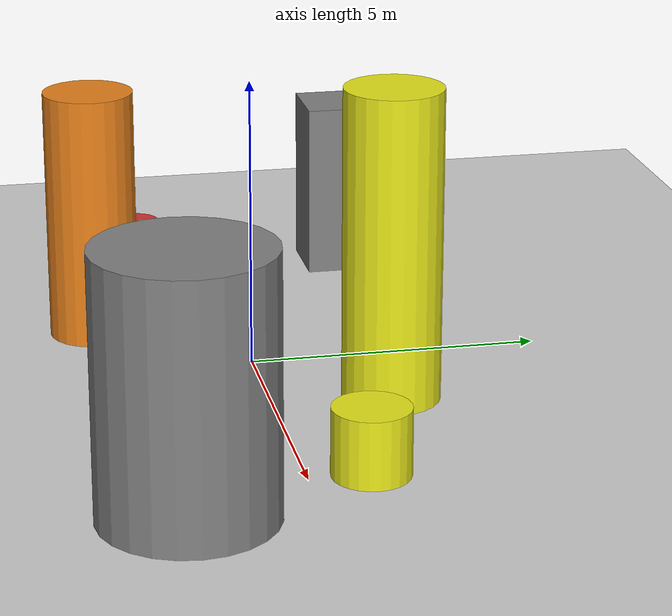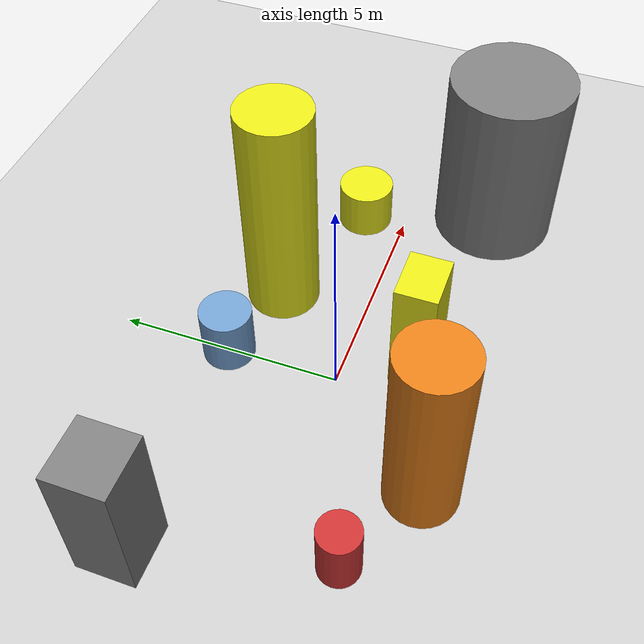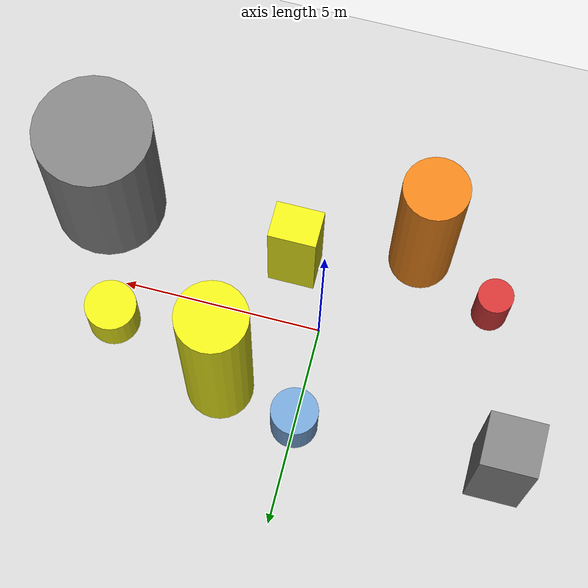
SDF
<?xml version='1.0'?>
<sdf version='1.6'>
  <world name='routeA_rl_v1__support_expansion__rl_test__mixed_3d_low_density_route__000170'>
    <!-- Sun light -->
    <light name='sun' type='directional'>
      <cast_shadows>1</cast_shadows>
      <pose>0 0 10 0 0 0</pose>
      <diffuse>0.8 0.8 0.8 1</diffuse>
      <specular>0.2 0.2 0.2 1</specular>
      <attenuation>
        <range>1000</range>
        <constant>0.9</constant>
        <linear>0.01</linear>
        <quadratic>0.001</quadratic>
      </attenuation>
      <direction>-0.5 0.1 -0.9</direction>
    </light>

    <!-- Ground plane -->
    <model name='ground_plane'>
      <static>1</static>
      <link name='link'>
        <collision name='collision'>
          <geometry>
            <plane>
              <normal>0 0 1</normal>
              <size>100 100</size>
            </plane>
          </geometry>
          <surface>
            <contact>
              <collide_bitmask>65535</collide_bitmask>
              <ode/>
            </contact>
            <friction>
              <ode>
                <mu>100</mu>
                <mu2>50</mu2>
              </ode>
              <torsional><ode/></torsional>
            </friction>
            <bounce/>
          </surface>
          <max_contacts>10</max_contacts>
        </collision>
        <visual name='visual'>
          <cast_shadows>0</cast_shadows>
          <geometry>
            <plane>
              <normal>0 0 1</normal>
              <size>100 100</size>
            </plane>
          </geometry>
          <material>
            <script>
              <uri>file://media/materials/scripts/gazebo.material</uri>
              <n>Gazebo/Grey</n>
            </script>
          </material>
        </visual>
      </link>
    </model>

    <!-- Environment -->
    <magnetic_field>6e-06 2.3e-05 -4.2e-05</magnetic_field>
    <atmosphere type='adiabatic'/>
    <physics name='default_physics' default='0' type='ode'>
      <gravity>0 0 -9.8</gravity>
      <max_step_size>0.004</max_step_size>
      <real_time_factor>1</real_time_factor>
      <real_time_update_rate>250</real_time_update_rate>
    </physics>
    <scene>
      <ambient>0.4 0.4 0.4 1</ambient>
      <background>0.7 0.7 0.7 1</background>
      <shadows>1</shadows>
    </scene>
    <wind/>
    <spherical_coordinates>
      <surface_model>EARTH_WGS84</surface_model>
      <latitude_deg>0</latitude_deg>
      <longitude_deg>0</longitude_deg>
      <elevation>0</elevation>
      <heading_deg>0</heading_deg>
    </spherical_coordinates>

    <!-- ============ OBSTACLES (8) ============ -->
    <model name='low_obs_0'>
      <static>1</static>
      <link name='link'>
        <visual name='visual'>
          <geometry>
            <cylinder>
              <radius>0.4429</radius>
              <length>1.3633</length>
            </cylinder>
          </geometry>
          <material>
            <script>
              <n>Gazebo/Red</n>
              <uri>file://media/materials/scripts/gazebo.material</uri>
            </script>
            <ambient>0.8 0.2 0.2 1</ambient>
          </material>
        </visual>
        <collision name='collision'>
          <geometry>
            <cylinder>
              <radius>0.4429</radius>
              <length>1.3633</length>
            </cylinder>
          </geometry>
          <max_contacts>10</max_contacts>
          <surface>
            <contact><ode/></contact>
            <bounce/>
            <friction>
              <ode><mu>1</mu><mu2>1</mu2></ode>
              <torsional><ode/></torsional>
            </friction>
          </surface>
        </collision>
      </link>
      <pose>-4.0000 -1.5000 0.6816 0 0 0.0000</pose>
    </model>

    <model name='low_obs_1'>
      <static>1</static>
      <link name='link'>
        <visual name='visual'>
          <geometry>
            <cylinder>
              <radius>0.5761</radius>
              <length>1.3268</length>
            </cylinder>
          </geometry>
          <material>
            <script>
              <n>Gazebo/Blue</n>
              <uri>file://media/materials/scripts/gazebo.material</uri>
            </script>
            <ambient>0.447 0.624 0.812 1</ambient>
          </material>
        </visual>
        <collision name='collision'>
          <geometry>
            <cylinder>
              <radius>0.5761</radius>
              <length>1.3268</length>
            </cylinder>
          </geometry>
          <max_contacts>10</max_contacts>
          <surface>
            <contact><ode/></contact>
            <bounce/>
            <friction>
              <ode><mu>1</mu><mu2>1</mu2></ode>
              <torsional><ode/></torsional>
            </friction>
          </surface>
        </collision>
      </link>
      <pose>0.0000 2.5000 0.6634 0 0 0.0000</pose>
    </model>

    <model name='low_obs_2'>
      <static>1</static>
      <link name='link'>
        <visual name='visual'>
          <geometry>
            <cylinder>
              <radius>0.6394</radius>
              <length>1.1343</length>
            </cylinder>
          </geometry>
          <material>
            <script>
              <n>Gazebo/Yellow</n>
              <uri>file://media/materials/scripts/gazebo.material</uri>
            </script>
            <ambient>0.9 0.9 0.1 1</ambient>
          </material>
        </visual>
        <collision name='collision'>
          <geometry>
            <cylinder>
              <radius>0.6394</radius>
              <length>1.1343</length>
            </cylinder>
          </geometry>
          <max_contacts>10</max_contacts>
          <surface>
            <contact><ode/></contact>
            <bounce/>
            <friction>
              <ode><mu>1</mu><mu2>1</mu2></ode>
              <torsional><ode/></torsional>
            </friction>
          </surface>
        </collision>
      </link>
      <pose>5.0000 1.0000 0.5672 0 0 0.0000</pose>
    </model>

    <model name='tall_obs_0'>
      <static>1</static>
      <link name='link'>
        <visual name='visual'>
          <geometry>
            <cylinder>
              <radius>0.7857</radius>
              <length>4.4233</length>
            </cylinder>
          </geometry>
          <material>
            <script>
              <n>Gazebo/Orange</n>
              <uri>file://media/materials/scripts/gazebo.material</uri>
            </script>
            <ambient>0.9 0.5 0.1 1</ambient>
          </material>
        </visual>
        <collision name='collision'>
          <geometry>
            <cylinder>
              <radius>0.7857</radius>
              <length>4.4233</length>
            </cylinder>
          </geometry>
          <max_contacts>10</max_contacts>
          <surface>
            <contact><ode/></contact>
            <bounce/>
            <friction>
              <ode><mu>1</mu><mu2>1</mu2></ode>
              <torsional><ode/></torsional>
            </friction>
          </surface>
        </collision>
      </link>
      <pose>-2.0000 -2.5000 2.2117 0 0 0.0000</pose>
    </model>

    <model name='tall_obs_1'>
      <static>1</static>
      <link name='link'>
        <visual name='visual'>
          <geometry>
            <cylinder>
              <radius>0.8269</radius>
              <length>5.3288</length>
            </cylinder>
          </geometry>
          <material>
            <script>
              <n>Gazebo/Yellow</n>
              <uri>file://media/materials/scripts/gazebo.material</uri>
            </script>
            <ambient>0.9 0.9 0.1 1</ambient>
          </material>
        </visual>
        <collision name='collision'>
          <geometry>
            <cylinder>
              <radius>0.8269</radius>
              <length>5.3288</length>
            </cylinder>
          </geometry>
          <max_contacts>10</max_contacts>
          <surface>
            <contact><ode/></contact>
            <bounce/>
            <friction>
              <ode><mu>1</mu><mu2>1</mu2></ode>
              <torsional><ode/></torsional>
            </friction>
          </surface>
        </collision>
      </link>
      <pose>2.0000 2.0000 2.6644 0 0 0.0000</pose>
    </model>

    <model name='tall_obs_2'>
      <static>1</static>
      <link name='link'>
        <visual name='visual'>
          <geometry>
            <cylinder>
              <radius>1.4180</radius>
              <length>4.2460</length>
            </cylinder>
          </geometry>
          <material>
            <script>
              <n>Gazebo/Grey</n>
              <uri>file://media/materials/scripts/gazebo.material</uri>
            </script>
            <ambient>0.5 0.5 0.5 1</ambient>
          </material>
        </visual>
        <collision name='collision'>
          <geometry>
            <cylinder>
              <radius>1.4180</radius>
              <length>4.2460</length>
            </cylinder>
          </geometry>
          <max_contacts>10</max_contacts>
          <surface>
            <contact><ode/></contact>
            <bounce/>
            <friction>
              <ode><mu>1</mu><mu2>1</mu2></ode>
              <torsional><ode/></torsional>
            </friction>
          </surface>
        </collision>
      </link>
      <pose>6.0000 -2.0000 2.1230 0 0 0.0000</pose>
    </model>

    <model name='med_obs_0'>
      <static>1</static>
      <link name='link'>
        <visual name='visual'>
          <geometry>
            <box>
              <size>1.3222 1.2652 3.1800</size>
            </box>
          </geometry>
          <material>
            <script>
              <n>Gazebo/Grey</n>
              <uri>file://media/materials/scripts/gazebo.material</uri>
            </script>
            <ambient>0.5 0.5 0.5 1</ambient>
          </material>
        </visual>
        <collision name='collision'>
          <geometry>
            <box>
              <size>1.3222 1.2652 3.1800</size>
            </box>
          </geometry>
          <max_contacts>10</max_contacts>
          <surface>
            <contact><ode/></contact>
            <bounce/>
            <friction>
              <ode><mu>1</mu><mu2>1</mu2></ode>
              <torsional><ode/></torsional>
            </friction>
          </surface>
        </collision>
      </link>
      <pose>-5.0000 2.5000 1.5900 0 0 0.0000</pose>
    </model>

    <model name='med_obs_1'>
      <static>1</static>
      <link name='link'>
        <visual name='visual'>
          <geometry>
            <box>
              <size>1.1759 0.9098 2.8408</size>
            </box>
          </geometry>
          <material>
            <script>
              <n>Gazebo/Yellow</n>
              <uri>file://media/materials/scripts/gazebo.material</uri>
            </script>
            <ambient>0.9 0.9 0.1 1</ambient>
          </material>
        </visual>
        <collision name='collision'>
          <geometry>
            <box>
              <size>1.1759 0.9098 2.8408</size>
            </box>
          </geometry>
          <max_contacts>10</max_contacts>
          <surface>
            <contact><ode/></contact>
            <bounce/>
            <friction>
              <ode><mu>1</mu><mu2>1</mu2></ode>
              <torsional><ode/></torsional>
            </friction>
          </surface>
        </collision>
      </link>
      <pose>1.0000 -1.5000 1.4204 0 0 0.0000</pose>
    </model>

    <!-- GUI camera -->
    <gui fullscreen='0'>
      <camera name='user_camera'>
        <pose>-15 0 18 0 0.85 0.15</pose>
        <view_controller>orbit</view_controller>
        <projection_type>perspective</projection_type>
      </camera>
    </gui>
  </world>
</sdf>
